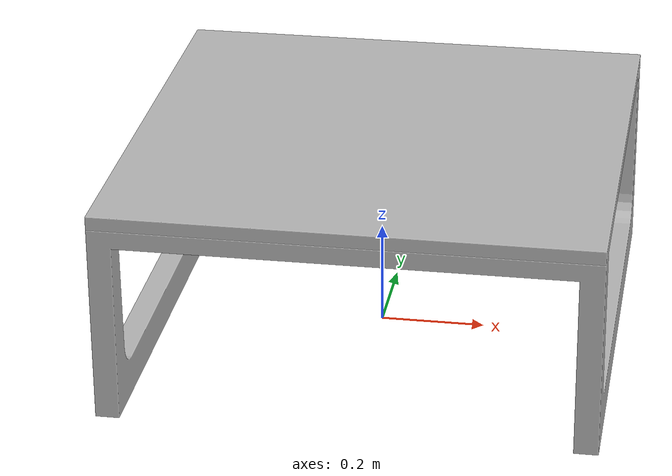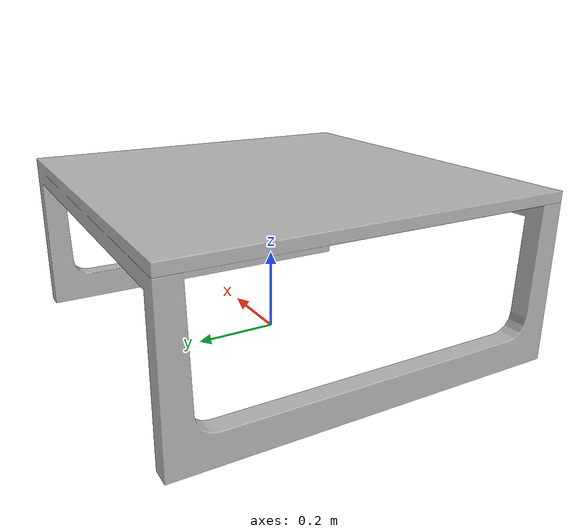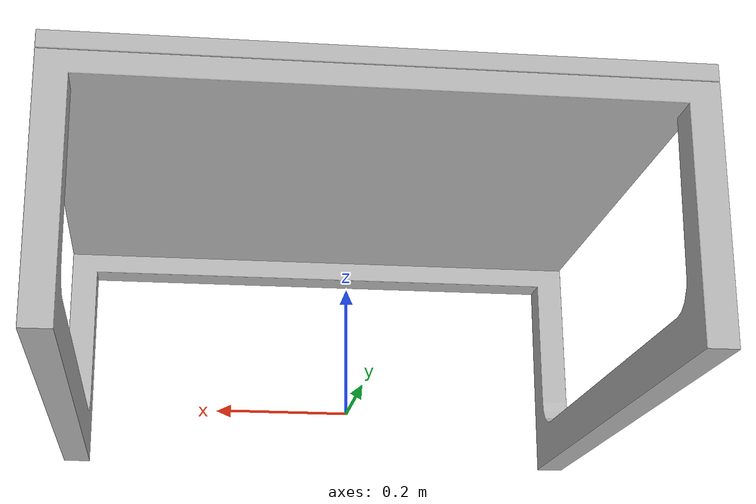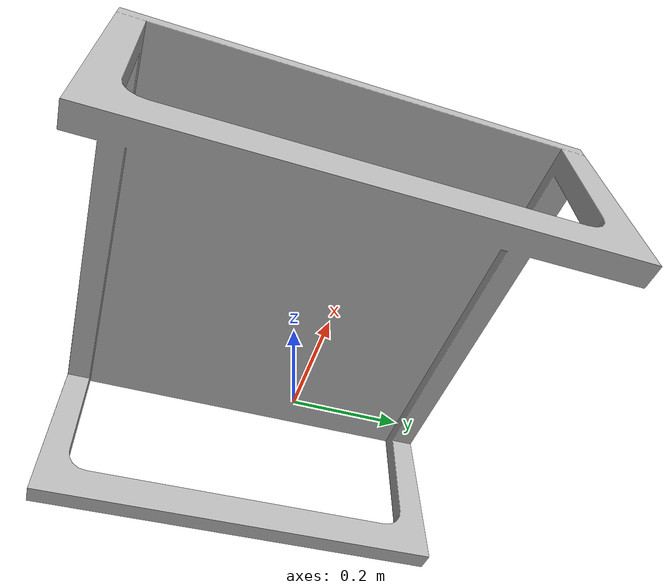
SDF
<?xml version='1.0'?>
<sdf version='1.4'>
  <model name='s__1992'>
    <pose>0 0 0 0 0 0</pose>
    <static>true</static>
    <link name='link'>
      <collision name='collision'>
        <pose>0 0 0 0 0 0</pose>
        <geometry>
          <box>
            <size>0.92 0.92 2</size>
          </box>
        </geometry>
      </collision>
      <visual name='visual'>
        <pose>0 0 0 0 0 0</pose>
        <geometry>
          <mesh><uri>model://s__1992/s__1992.dae</uri></mesh>
        </geometry>
      </visual>
    </link>
  </model>
</sdf>
